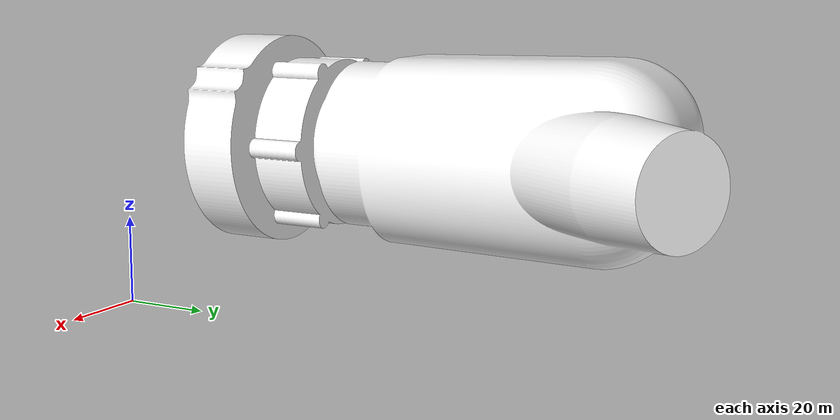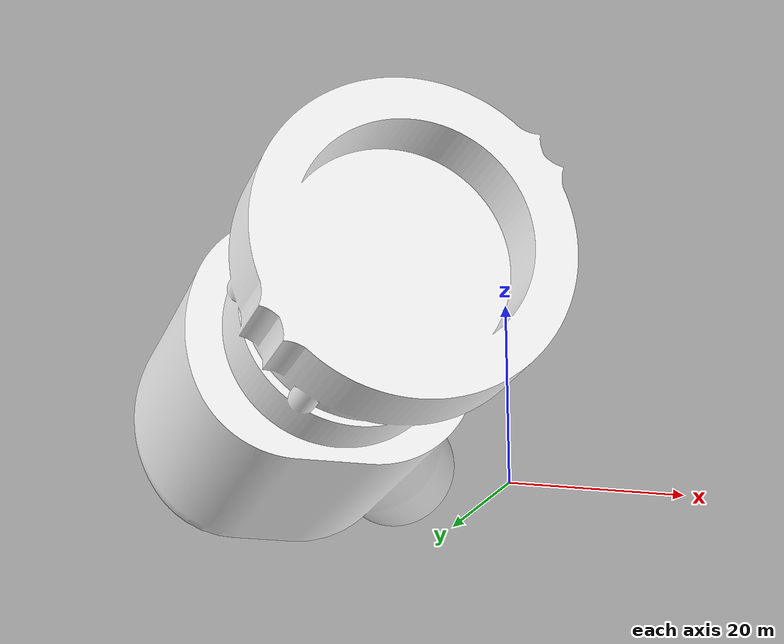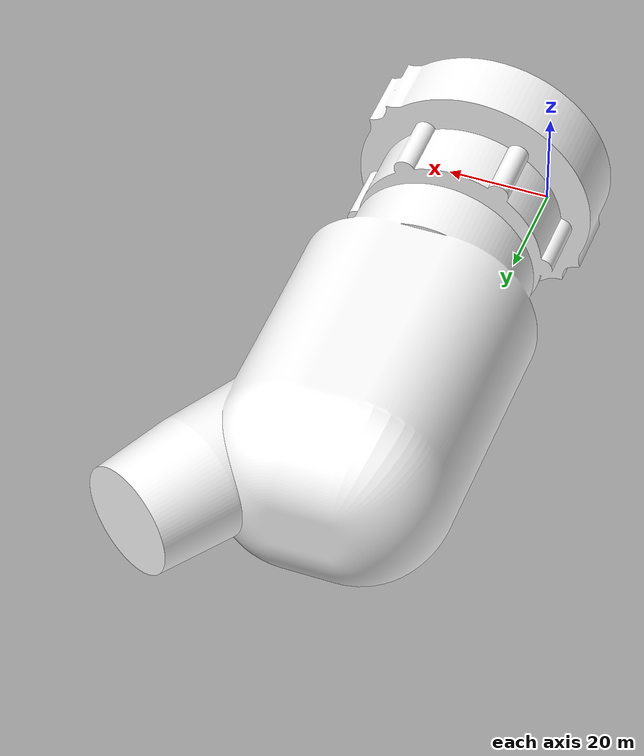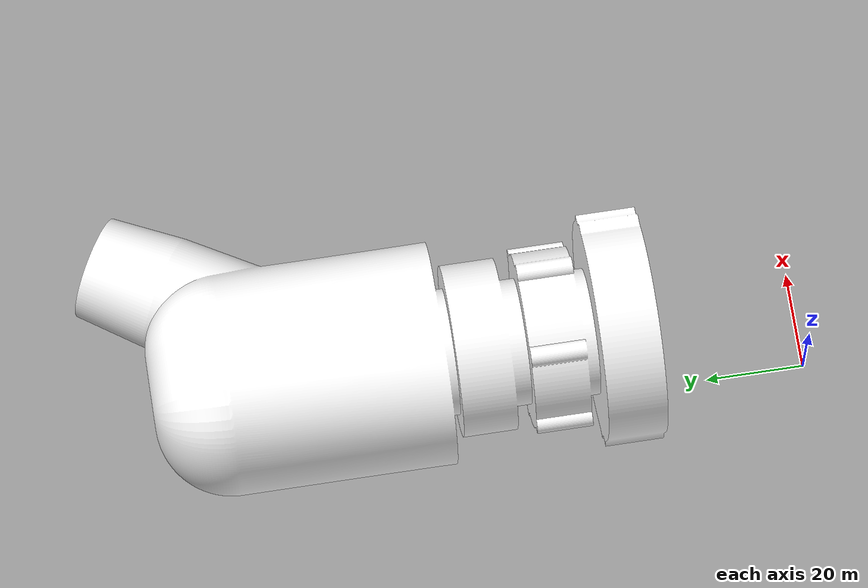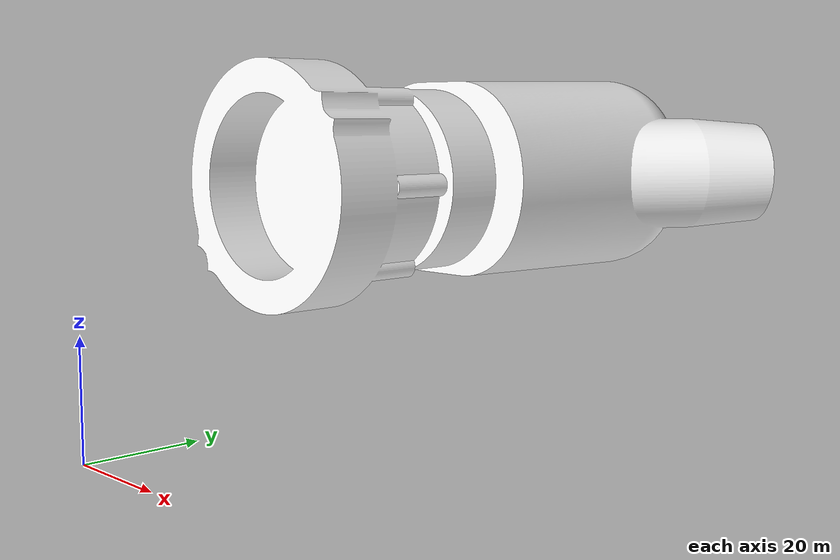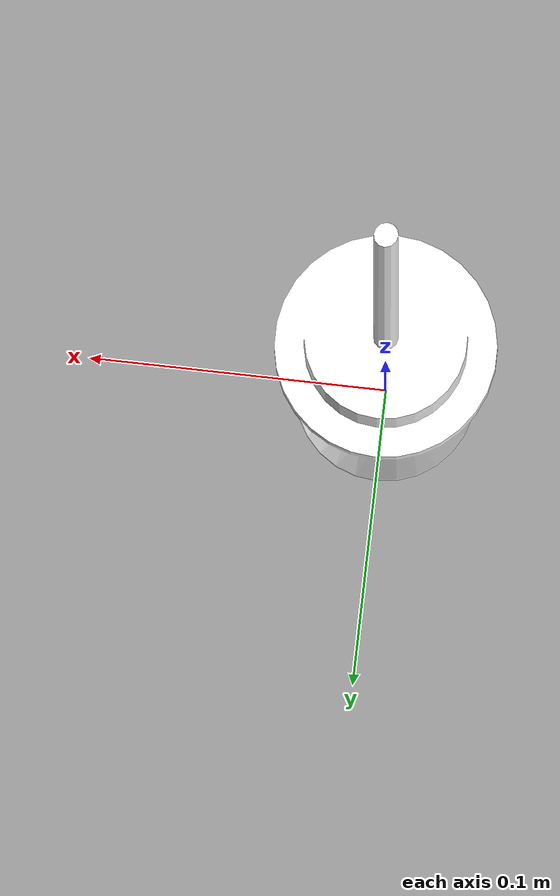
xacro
<?xml version="1.0"?>

<!-- Here we define the robot, we named it "endoscope" -->
<robot xmlns:xacro="http://www.ros.org/wiki/xacro" name="endoscope">

    <!--Import the endoscope macro -->
    <xacro:include filename="$(find da_vinci_endoscope_description)/urdf/da_vinci_endoscope_description.urdf.xacro"/>

    <!--  Arguments for the med7 macro  -->
    <xacro:arg name="endoscope_name" default="da_vinci_endoscope"/>
    <xacro:arg name="robot_name" default="lbr"/>

    <!-- fix to world -->
    <link name="world"/>

    <!-- insert endoscope -->
    <xacro:da_vinci_endoscope  endoscope_name="$(arg endoscope_name)" robot_name="$(arg robot_name)" parent="world"/>

</robot>

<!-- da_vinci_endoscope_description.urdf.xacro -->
<robot xmlns:xacro="http://www.ros.org/wiki/xacro">

    <xacro:macro name="da_vinci_endoscope" params="endoscope_name robot_name parent">

        <!-- include gazebo specifications -->
        <xacro:include filename="$(find da_vinci_endoscope_description)/gazebo/da_vinci_endoscope.gazebo.xacro"/>

        <!--joint between {parent} and link_0-->
        <joint name="${parent}_${endoscope_name}_joint" type="fixed">
            <parent link="${parent}"/>
            <child link="${endoscope_name}_link_0"/>
            <origin xyz="0 0 0" rpy="0 0 1.57079632679"/>
        </joint>

        <!-- link 0 -->
        <link name="${endoscope_name}_link_0">
            <inertial>
                <origin rpy="0 0 0" xyz="-7.270573632311392e-18 -7.270573632311392e-18 0.09976749827968114"/>
                <mass value="2.4549415802586934"/>
                <inertia ixx="0.008545" ixy="-0.0" ixz="-0.0" iyy="0.008545" iyz="-0.0" izz="0.000822"/>
            </inertial>
            <visual>
                <origin rpy="0 0 0" xyz="0 0 0"/>
                <geometry>
                    <mesh filename="package://da_vinci_endoscope_description/meshes/visual/link_0.stl"/>
                </geometry>
                <material name="white">
                    <color rgba="1.0 1.0 1.0 1.0"/>
                </material>
            </visual>
            <collision>
                <origin rpy="0 0 0" xyz="0 0 0"/>
                <geometry>
                    <mesh filename="package://da_vinci_endoscope_description/meshes/collision/link_0.stl"/>
                </geometry>
            </collision>
        </link>

        <joint name="${endoscope_name}_joint_1" type="fixed">
            <origin rpy="0 0 0" xyz="0.0 0.0 0.182"/>
            <parent link="${endoscope_name}_link_0"/>
            <child link="${endoscope_name}_link_1"/>
        </joint>

        <!-- link 1 -->
        <link name="${endoscope_name}_link_1">
            <inertial>
                <origin rpy="0 0 0" xyz="-1.8420957352208925e-18 5.908967207684404e-06 0.17400951653092117"/>
                <mass value="0.1513971388421877"/>
                <inertia ixx="0.001529" ixy="-0.0" ixz="0.0" iyy="0.001529" iyz="-0.0" izz="1e-06"/>
            </inertial>
            <visual>
                <origin rpy="0 0 0" xyz="0.0 -0.0 -0.182"/>
                <geometry>
                    <mesh filename="package://da_vinci_endoscope_description/meshes/visual/link_1.stl"/>
                </geometry>
                <material name="white">
                    <color rgba="1.0 1.0 1.0 1.0"/>
                </material>
            </visual>
            <collision>
                <origin rpy="0 0 0" xyz="0.0 -0.0 -0.182"/>
                <geometry>
                    <mesh filename="package://da_vinci_endoscope_description/meshes/collision/link_1.stl"/>
                </geometry>
            </collision>
        </link>

        <joint name="${endoscope_name}_joint_cm" type="fixed">
            <parent link="${endoscope_name}_link_1"/>
            <child link="${endoscope_name}_link_cm"/>
            <origin xyz="0 0 0.349946" rpy="0 -1.57079632679 -1.57079632679"/>
        </joint>

        <!-- camera link -->
        <link name="${endoscope_name}_link_cm">
        </link>

        <!-- optical frame https://answers.ros.org/question/232534/gazebo-camera-frame-is-inconsistent-with-rviz-opencv-convention/ -->
        <joint name="${endoscope_name}_joint_cm_optical" type="fixed">
            <parent link="${endoscope_name}_link_cm"/>
            <child link="${endoscope_name}_link_cm_optical"/>
            <origin xyz="0 0 0" rpy="-1.57079632679 0 -1.57079632679"/>
        </joint>

        <link name="${endoscope_name}_link_cm_optical">
        </link>

        <!-- extensions -->
        <xacro:da_vinci_endoscope_gazebo endoscope_name="${endoscope_name}" robot_name="${robot_name}"/>

    </xacro:macro>

</robot>
